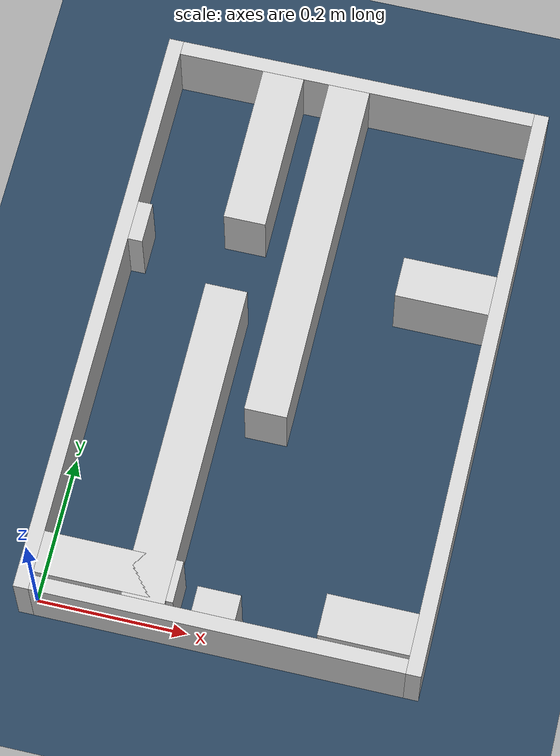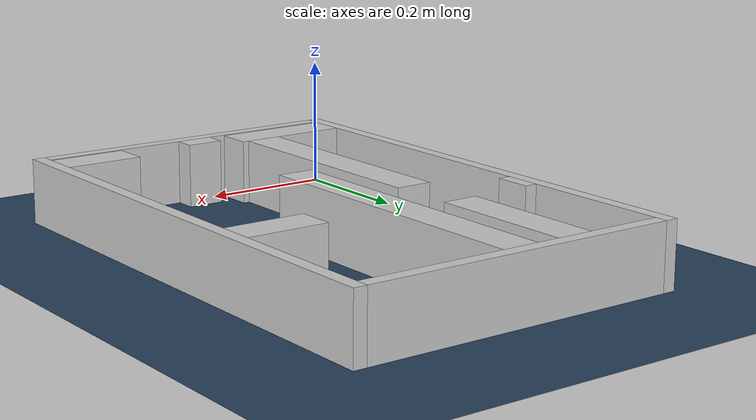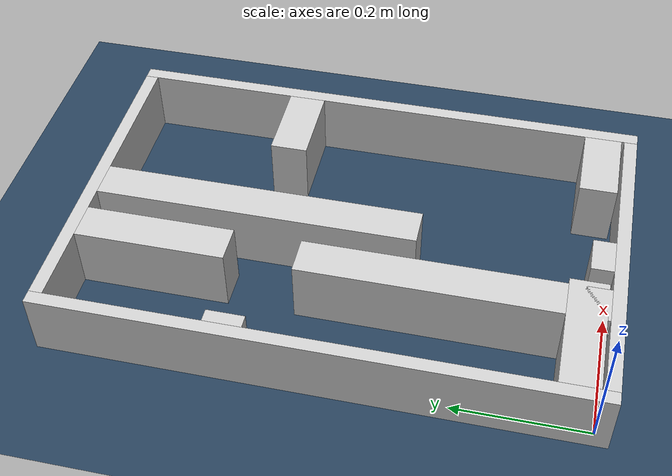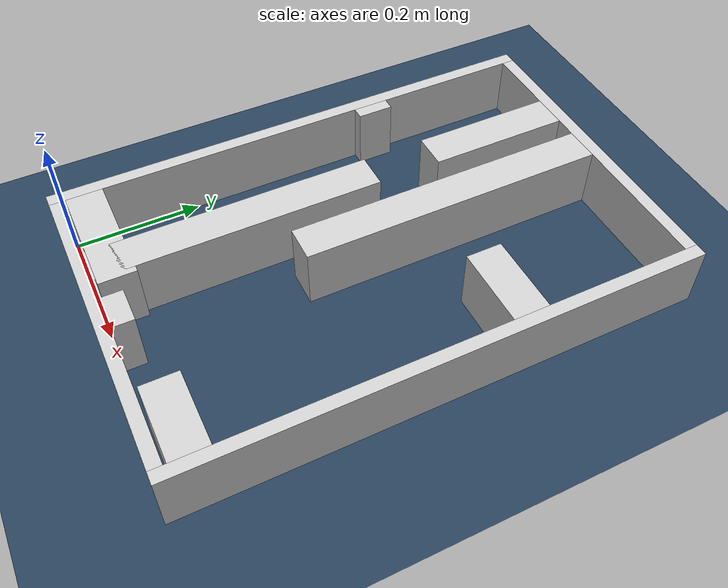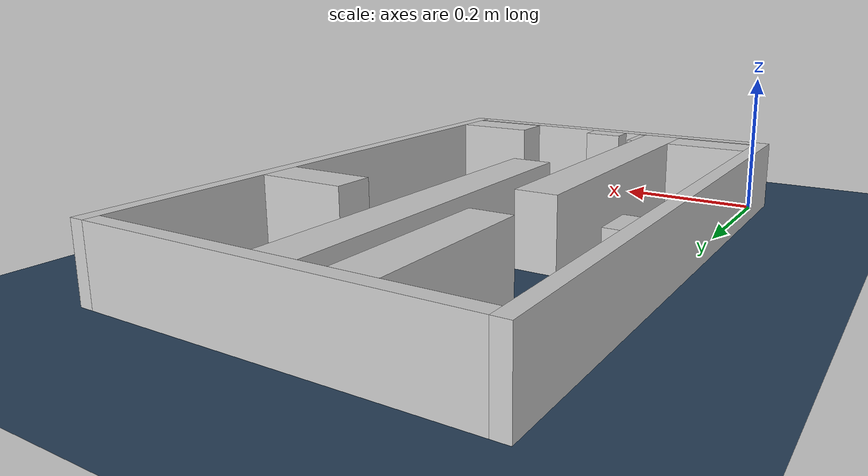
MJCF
<?xml version="1.0" ?>
<mujoco model="generated_real_template">
  <compiler angle="degree"/>
  <option timestep="0.002" integrator="implicitfast" iterations="100" cone="elliptic"/>
  <default>
    <geom density="1"/>
  </default>
  <asset>
    <texture builtin="gradient" height="3072" rgb1="0.3 0.5 0.7" rgb2="0 0 0" type="skybox" width="512"/>
    <texture builtin="checker" height="300" mark="edge" markrgb="0.8 0.8 0.8" name="groundplane" rgb1="0.2 0.3 0.4" rgb2="0.1 0.2 0.3" type="2d" width="300"/>
    <material name="groundplane" reflectance="0.2" texrepeat="5 5" texture="groundplane" texuniform="true"/>
  </asset>
  <worldbody>
    <light dir="0 0 -1" directional="true" pos="0 0 1.5"/>
    <geom name="floor" type="plane" condim="4" friction="0.5 0.005 0.001" material="groundplane" size="0 0 0.05"/>
    <body name="walls">
      <geom name="wall_boundary_left" type="box" condim="4" friction="1.0 0.005 0.0001" rgba="0.8 0.8 0.8 1" pos="-0.010000 0.387500 0.050000" euler="0 0 0.000000" size="0.010000 0.407500 0.050000"/>
      <geom name="wall_boundary_right" type="box" condim="4" friction="1.0 0.005 0.0001" rgba="0.8 0.8 0.8 1" pos="0.500000 0.387500 0.050000" euler="0 0 0.000000" size="0.010000 0.407500 0.050000"/>
      <geom name="wall_boundary_bottom" type="box" condim="4" friction="1.0 0.005 0.0001" rgba="0.8 0.8 0.8 1" pos="0.245000 -0.010000 0.050000" euler="0 0 0.000000" size="0.245000 0.010000 0.050000"/>
      <geom name="wall_boundary_top" type="box" condim="4" friction="1.0 0.005 0.0001" rgba="0.8 0.8 0.8 1" pos="0.245000 0.785000 0.050000" euler="0 0 0.000000" size="0.245000 0.010000 0.050000"/>
      <geom name="wall_inner_1_1" type="box" condim="4" friction="1.0 0.005 0.0001" rgba="0.8 0.8 0.8 1" pos="0.009884 0.515688 0.050000" euler="0 0 0.000000" size="0.009884 0.028500 0.050000"/>
      <geom name="wall_inner_1_2" type="box" condim="4" friction="1.0 0.005 0.0001" rgba="0.8 0.8 0.8 1" pos="0.427045 0.515688 0.050000" euler="0 0 0.000000" size="0.062955 0.028500 0.050000"/>
      <geom name="wall_inner_2_1" type="box" condim="4" friction="1.0 0.005 0.0001" rgba="0.8 0.8 0.8 1" pos="0.236900 0.016827 0.050000" euler="0 0 90.000000" size="0.016827 0.028500 0.050000"/>
      <geom name="wall_inner_2_2" type="box" condim="4" friction="1.0 0.005 0.0001" rgba="0.8 0.8 0.8 1" pos="0.236900 0.529618 0.050000" euler="0 0 90.000000" size="0.245382 0.028500 0.050000"/>
      <geom name="wall_inner_3_1" type="box" condim="4" friction="1.0 0.005 0.0001" rgba="0.8 0.8 0.8 1" pos="0.144964 0.223644 0.050000" euler="0 0 90.000000" size="0.223644 0.028500 0.050000"/>
      <geom name="wall_inner_3_2" type="box" condim="4" friction="1.0 0.005 0.0001" rgba="0.8 0.8 0.8 1" pos="0.144964 0.661791 0.050000" euler="0 0 90.000000" size="0.113209 0.028500 0.050000"/>
      <geom name="wall_inner_4_1" type="box" condim="4" friction="1.0 0.005 0.0001" rgba="0.8 0.8 0.8 1" pos="0.091632 0.032920 0.050000" euler="0 0 0.000000" size="0.091632 0.028500 0.050000"/>
      <geom name="wall_inner_4_2" type="box" condim="4" friction="1.0 0.005 0.0001" rgba="0.8 0.8 0.8 1" pos="0.430207 0.032920 0.050000" euler="0 0 0.000000" size="0.059793 0.028500 0.050000"/>
    </body>
  </worldbody>
</mujoco>
